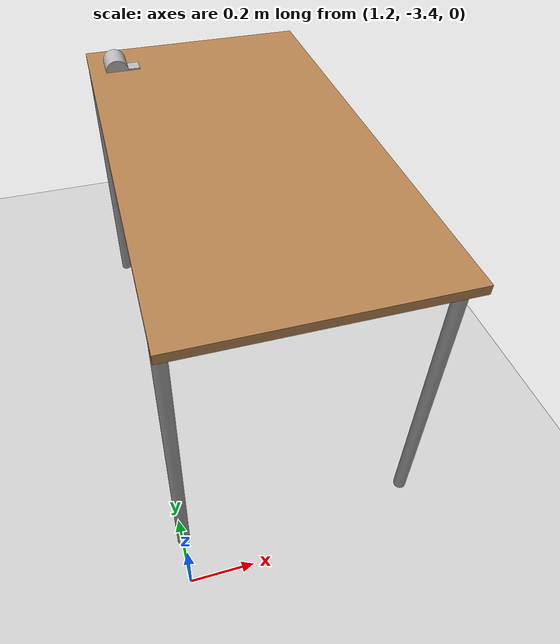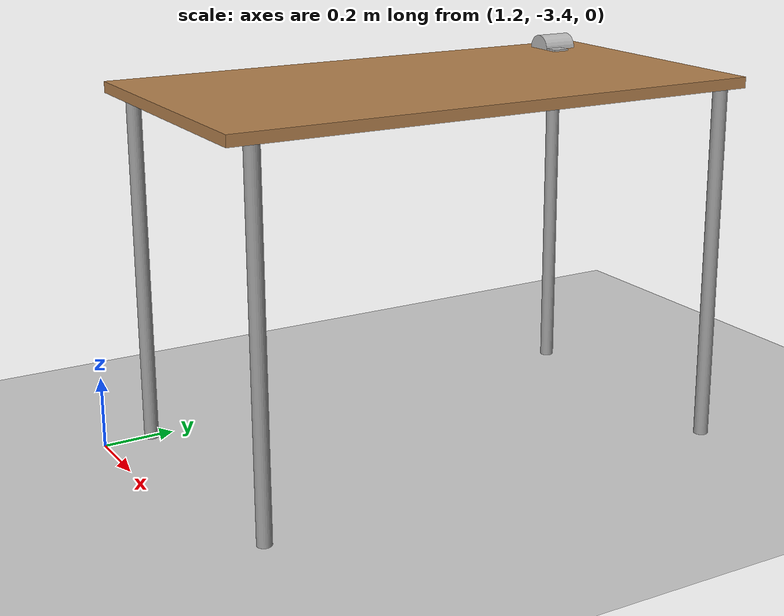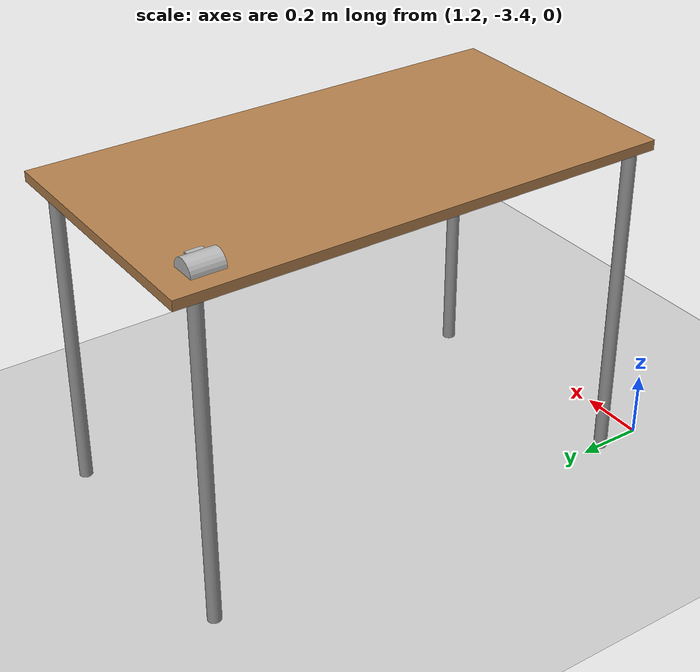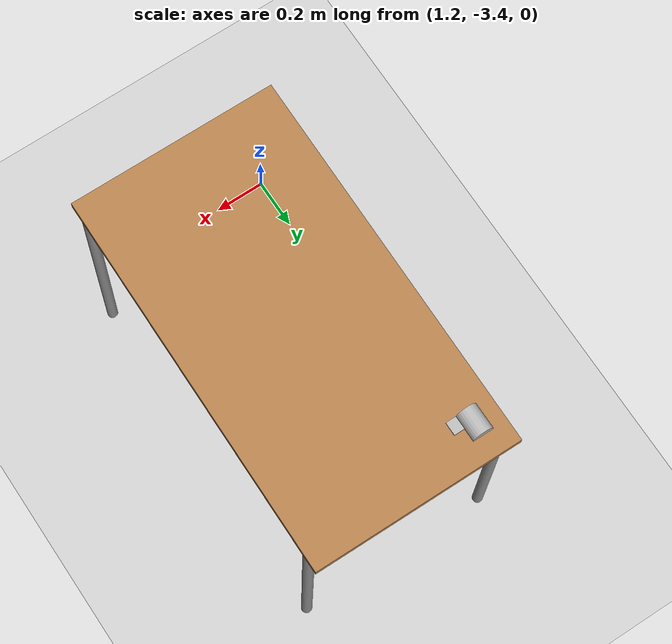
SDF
<sdf version="1.4">
 <world name="default">
  <include><uri>model://ground_plane</uri></include>
  <include><uri>model://sun</uri></include>
  <include><uri>model://cup</uri><name>Cup</name><pose>1.287022 -1.916976 1.015000 1.57 0 0</pose></include>
  <include><uri>model://table</uri><name>table</name><pose>1.587920 -2.587088 0 0 -0 1.56611</pose></include>
 </world>
</sdf>

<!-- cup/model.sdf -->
<sdf version="1.6">
  <model name="rwc2022/cup">
    <link name="1_link">
      <collision name="1_col">
        <geometry>
          <cylinder>
            <length>0.10</length>
            <radius>0.04</radius>
          </cylinder>
        </geometry>
      </collision>
      <visual name="1_vis">
        <geometry>
          <cylinder>
            <length>0.10</length>
            <radius>0.04</radius>
          </cylinder>
        </geometry>
      </visual>
      <pose>0 0 0.05 0 0 0</pose>
    </link>
    <link name="2_link">
      <collision name="2_col">
        <geometry>
          <box>
            <size>0.03 0.01 0.05</size>
          </box>
        </geometry>
      </collision>
      <visual name="2_vis">
        <geometry>
          <box>
            <size>0.04 0.01 0.05</size>
          </box>
        </geometry>
      </visual>
      <pose>0.06 0 0.075 0 0 0</pose>
    </link>
    <static>true</static>
  </model>
</sdf>

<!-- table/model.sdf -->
<sdf version="1.5">
  <model name="table">
    <static>true</static>
    <link name="link">
      <collision name="surface">
        <pose>0 0 1.0 0 0 0</pose>
        <geometry>
          <box>
            <size>1.5 0.8 0.03</size>
          </box>
        </geometry>
        <surface>
          <friction>
            <ode>
              <mu>0.6</mu>
              <mu2>0.6</mu2>
            </ode>
          </friction>
        </surface>
      </collision>
      <visual name="visual1">
        <pose>0 0 1.0 0 0 0</pose>
        <geometry>
          <box>
            <size>1.5 0.8 0.03</size>
          </box>
        </geometry>
        <material>
          <script>
            <uri>model://media/materials/scripts/gazebo.material</uri>
            <name>Gazebo/Wood</name>
          </script>
        </material>
      </visual>
      <collision name="front_left_leg">
        <pose>0.68 0.38 0.5 0 0 0</pose>
        <geometry>
          <cylinder>
            <radius>0.02</radius>
            <length>1.0</length>
          </cylinder>
        </geometry>
      </collision>
      <visual name="front_left_leg">
        <pose>0.68 0.38 0.5 0 0 0</pose>
        <geometry>
          <cylinder>
            <radius>0.02</radius>
            <length>1.0</length>
          </cylinder>
        </geometry>
        <material>
          <script>
            <uri>model://media/materials/scripts/gazebo.material</uri>
            <name>Gazebo/Grey</name>
          </script>
        </material>
      </visual>
      <collision name="front_right_leg">
        <pose>0.68 -0.38 0.5 0 0 0</pose>
        <geometry>
          <cylinder>
            <radius>0.02</radius>
            <length>1.0</length>
          </cylinder>
        </geometry>
      </collision>
      <visual name="front_right_leg">
        <pose>0.68 -0.38 0.5 0 0 0</pose>
        <geometry>
          <cylinder>
            <radius>0.02</radius>
            <length>1.0</length>
          </cylinder>
        </geometry>
        <material>
          <script>
            <uri>model://media/materials/scripts/gazebo.material</uri>
            <name>Gazebo/Grey</name>
          </script>
        </material>
      </visual>
      <collision name="back_right_leg">
        <pose>-0.68 -0.38 0.5 0 0 0</pose>
        <geometry>
          <cylinder>
            <radius>0.02</radius>
            <length>1.0</length>
          </cylinder>
        </geometry>
      </collision>
      <visual name="back_right_leg">
        <pose>-0.68 -0.38 0.5 0 0 0</pose>
        <geometry>
          <cylinder>
            <radius>0.02</radius>
            <length>1.0</length>
          </cylinder>
        </geometry>
        <material>
          <script>
            <uri>model://media/materials/scripts/gazebo.material</uri>
            <name>Gazebo/Grey</name>
          </script>
        </material>
      </visual>
      <collision name="back_left_leg">
        <pose>-0.68 0.38 0.5 0 0 0</pose>
        <geometry>
          <cylinder>
            <radius>0.02</radius>
            <length>1.0</length>
          </cylinder>
        </geometry>
      </collision>
      <visual name="back_left_leg">
        <pose>-0.68 0.38 0.5 0 0 0</pose>
        <geometry>
          <cylinder>
            <radius>0.02</radius>
            <length>1.0</length>
          </cylinder>
        </geometry>
        <material>
          <script>
            <uri>model://media/materials/scripts/gazebo.material</uri>
            <name>Gazebo/Grey</name>
          </script>
        </material>
      </visual>
    </link>
  </model>
</sdf>
